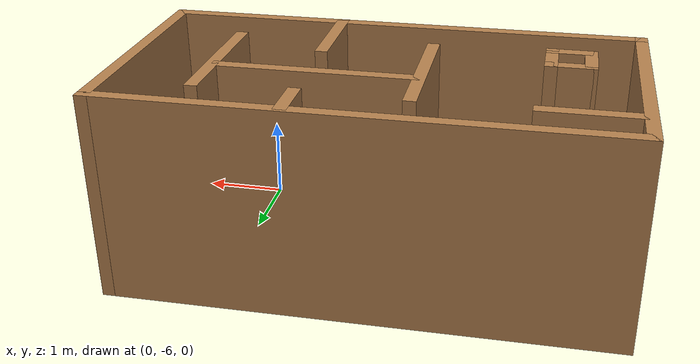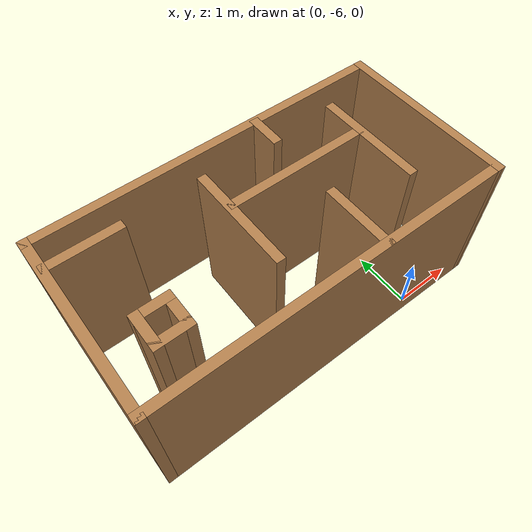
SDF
<?xml version='1.0'?>
<sdf version='1.7'>
  <model name='world_model'>
    <pose>-1.705 -3.0575 0 0 -0 0</pose>
    <link name='Wall_16'>
      <collision name='Wall_16_Collision'>
        <geometry>
          <box>
            <size>3 0.15 2.5</size>
          </box>
        </geometry>
        <pose>0 0 1.25 0 -0 0</pose>
      </collision>
      <visual name='Wall_16_Visual'>
        <pose>0 0 1.25 0 -0 0</pose>
        <geometry>
          <box>
            <size>3 0.15 2.5</size>
          </box>
        </geometry>
        <material>
          <script>
            <uri>file://media/materials/scripts/gazebo.material</uri>
            <name>Gazebo/Wood</name>
          </script>
          <ambient>1 1 1 1</ambient>
        </material>
        <meta>
          <layer>0</layer>
        </meta>
      </visual>
      <pose>-2.925 -1.5575 0 0 -0 -1.5708</pose>
    </link>
    <link name='Wall_17'>
      <collision name='Wall_17_Collision'>
        <geometry>
          <box>
            <size>6 0.15 2.5</size>
          </box>
        </geometry>
        <pose>0 0 1.25 0 -0 0</pose>
      </collision>
      <visual name='Wall_17_Visual'>
        <pose>0 0 1.25 0 -0 0</pose>
        <geometry>
          <box>
            <size>6 0.15 2.5</size>
          </box>
        </geometry>
        <material>
          <script>
            <uri>file://media/materials/scripts/gazebo.material</uri>
            <name>Gazebo/Wood</name>
          </script>
          <ambient>1 1 1 1</ambient>
        </material>
        <meta>
          <layer>0</layer>
        </meta>
      </visual>
      <pose>0 -2.9825 0 0 -0 0</pose>
    </link>
    <link name='Wall_18'>
      <collision name='Wall_18_Collision'>
        <geometry>
          <box>
            <size>3 0.15 2.5</size>
          </box>
        </geometry>
        <pose>0 0 1.25 0 -0 0</pose>
      </collision>
      <visual name='Wall_18_Visual'>
        <pose>0 0 1.25 0 -0 0</pose>
        <geometry>
          <box>
            <size>3 0.15 2.5</size>
          </box>
        </geometry>
        <material>
          <script>
            <uri>file://media/materials/scripts/gazebo.material</uri>
            <name>Gazebo/Wood</name>
          </script>
          <ambient>1 1 1 1</ambient>
        </material>
        <meta>
          <layer>0</layer>
        </meta>
      </visual>
      <pose>2.925 -1.5575 0 0 -0 1.5708</pose>
    </link>
    <link name='Wall_19'>
      <collision name='Wall_19_Collision'>
        <geometry>
          <box>
            <size>6 0.15 2.5</size>
          </box>
        </geometry>
        <pose>0 0 1.25 0 -0 0</pose>
      </collision>
      <visual name='Wall_19_Visual'>
        <pose>0 0 1.25 0 -0 0</pose>
        <geometry>
          <box>
            <size>6 0.15 2.5</size>
          </box>
        </geometry>
        <material>
          <script>
            <uri>file://media/materials/scripts/gazebo.material</uri>
            <name>Gazebo/Wood</name>
          </script>
          <ambient>1 1 1 1</ambient>
        </material>
        <meta>
          <layer>0</layer>
        </meta>
      </visual>
      <pose>0 -0.1325 0 0 -0 3.14159</pose>
    </link>
    <link name='Wall_21'>
      <collision name='Wall_21_Collision'>
        <geometry>
          <box>
            <size>1.8 0.15 2.5</size>
          </box>
        </geometry>
        <pose>0 0 1.25 0 -0 0</pose>
      </collision>
      <visual name='Wall_21_Visual'>
        <pose>0 0 1.25 0 -0 0</pose>
        <geometry>
          <box>
            <size>1.8 0.15 2.5</size>
          </box>
        </geometry>
        <material>
          <script>
            <uri>file://media/materials/scripts/gazebo.material</uri>
            <name>Gazebo/Wood</name>
          </script>
          <ambient>1 1 1 1</ambient>
        </material>
        <meta>
          <layer>0</layer>
        </meta>
      </visual>
      <pose>-0.485 -1.4675 0 0 -0 -1.5708</pose>
    </link>
    <link name='Wall_34'>
      <collision name='Wall_34_Collision'>
        <geometry>
          <box>
            <size>2.4 0.15 2.5</size>
          </box>
        </geometry>
        <pose>0 0 1.25 0 -0 0</pose>
      </collision>
      <visual name='Wall_34_Visual'>
        <pose>0 0 1.25 0 -0 0</pose>
        <geometry>
          <box>
            <size>2.4 0.15 2.5</size>
          </box>
        </geometry>
        <material>
          <script>
            <uri>file://media/materials/scripts/gazebo.material</uri>
            <name>Gazebo/Wood</name>
          </script>
          <ambient>1 1 1 1</ambient>
        </material>
        <meta>
          <layer>0</layer>
        </meta>
      </visual>
      <pose>0.7 -1.2425 0 0 -0 0</pose>
    </link>
    <link name='Wall_36'>
      <collision name='Wall_36_Collision'>
        <geometry>
          <box>
            <size>1.8 0.15 2.5</size>
          </box>
        </geometry>
        <pose>0 0 1.25 0 -0 0</pose>
      </collision>
      <visual name='Wall_36_Visual'>
        <pose>0 0 1.25 0 -0 0</pose>
        <geometry>
          <box>
            <size>1.8 0.15 2.5</size>
          </box>
        </geometry>
        <material>
          <script>
            <uri>file://media/materials/scripts/gazebo.material</uri>
            <name>Gazebo/Wood</name>
          </script>
          <ambient>1 1 1 1</ambient>
        </material>
        <meta>
          <layer>0</layer>
        </meta>
      </visual>
      <pose>1.895 -1.4475 0 0 -0 -1.5708</pose>
    </link>
    <link name='Wall_38'>
      <collision name='Wall_38_Collision'>
        <geometry>
          <box>
            <size>0.6 0.15 2.5</size>
          </box>
        </geometry>
        <pose>0 0 1.25 0 -0 0</pose>
      </collision>
      <visual name='Wall_38_Visual'>
        <pose>0 0 1.25 0 -0 0</pose>
        <geometry>
          <box>
            <size>0.6 0.15 2.5</size>
          </box>
        </geometry>
        <material>
          <script>
            <uri>file://media/materials/scripts/gazebo.material</uri>
            <name>Gazebo/Wood</name>
          </script>
          <ambient>1 1 1 1</ambient>
        </material>
        <meta>
          <layer>0</layer>
        </meta>
      </visual>
      <pose>-2.335 -2.1575 0 0 -0 -1.5708</pose>
    </link>
    <link name='Wall_42'>
      <collision name='Wall_42_Collision'>
        <geometry>
          <box>
            <size>1.2 0.15 2.5</size>
          </box>
        </geometry>
        <pose>0 0 1.25 0 -0 0</pose>
      </collision>
      <visual name='Wall_42_Visual'>
        <pose>0 0 1.25 0 -0 0</pose>
        <geometry>
          <box>
            <size>1.2 0.15 2.5</size>
          </box>
        </geometry>
        <material>
          <script>
            <uri>file://media/materials/scripts/gazebo.material</uri>
            <name>Gazebo/Wood</name>
          </script>
          <ambient>1 1 1 1</ambient>
        </material>
        <meta>
          <layer>0</layer>
        </meta>
      </visual>
      <pose>-2.35 -0.6325 0 0 -0 3.14159</pose>
    </link>
    <link name='Wall_44'>
      <collision name='Wall_44_Collision'>
        <geometry>
          <box>
            <size>0.6 0.15 2.5</size>
          </box>
        </geometry>
        <pose>0 0 1.25 0 -0 0</pose>
      </collision>
      <visual name='Wall_44_Visual'>
        <pose>0 0 1.25 0 -0 0</pose>
        <geometry>
          <box>
            <size>0.6 0.15 2.5</size>
          </box>
        </geometry>
        <material>
          <script>
            <uri>file://media/materials/scripts/gazebo.material</uri>
            <name>Gazebo/Wood</name>
          </script>
          <ambient>1 1 1 1</ambient>
        </material>
        <meta>
          <layer>0</layer>
        </meta>
      </visual>
      <pose>0.775 -0.3975 0 0 -0 1.5708</pose>
    </link>
    <link name='Wall_64'>
      <collision name='Wall_64_Collision'>
        <geometry>
          <box>
            <size>0.6 0.15 2.5</size>
          </box>
        </geometry>
        <pose>0 0 1.25 0 -0 0</pose>
      </collision>
      <visual name='Wall_64_Visual'>
        <pose>0 0 1.25 0 -0 0</pose>
        <geometry>
          <box>
            <size>0.6 0.15 2.5</size>
          </box>
        </geometry>
        <material>
          <script>
            <uri>file://media/materials/scripts/gazebo.material</uri>
            <name>Gazebo/Wood</name>
          </script>
          <ambient>1 1 1 1</ambient>
        </material>
        <meta>
          <layer>0</layer>
        </meta>
      </visual>
      <pose>-2.11 -1.9325 0 0 -0 0</pose>
    </link>
    <link name='Wall_65'>
      <collision name='Wall_65_Collision'>
        <geometry>
          <box>
            <size>0.600111 0.15 2.5</size>
          </box>
        </geometry>
        <pose>0 0 1.25 0 -0 0</pose>
      </collision>
      <visual name='Wall_65_Visual'>
        <pose>0 0 1.25 0 -0 0</pose>
        <geometry>
          <box>
            <size>0.600111 0.15 2.5</size>
          </box>
        </geometry>
        <material>
          <script>
            <uri>file://media/materials/scripts/gazebo.material</uri>
            <name>Gazebo/Wood</name>
          </script>
          <ambient>1 1 1 1</ambient>
        </material>
        <meta>
          <layer>0</layer>
        </meta>
      </visual>
      <pose>-1.885 -2.1575 0 0 -0 -1.5708</pose>
    </link>
    <link name='Wall_66'>
      <collision name='Wall_66_Collision'>
        <geometry>
          <box>
            <size>0.6 0.15 2.5</size>
          </box>
        </geometry>
        <pose>0 0 1.25 0 -0 0</pose>
      </collision>
      <visual name='Wall_66_Visual'>
        <pose>0 0 1.25 0 -0 0</pose>
        <geometry>
          <box>
            <size>0.6 0.15 2.5</size>
          </box>
        </geometry>
        <material>
          <script>
            <uri>file://media/materials/scripts/gazebo.material</uri>
            <name>Gazebo/Wood</name>
          </script>
          <ambient>1 1 1 1</ambient>
        </material>
        <meta>
          <layer>0</layer>
        </meta>
      </visual>
      <pose>-2.11 -2.3825 0 0 -0 3.14159</pose>
    </link>
    <link name='Wall_68'>
      <collision name='Wall_68_Collision'>
        <geometry>
          <box>
            <size>1.2 0.15 2.5</size>
          </box>
        </geometry>
        <pose>0 0 1.25 0 -0 0</pose>
      </collision>
      <visual name='Wall_68_Visual'>
        <pose>0 0 1.25 0 -0 0</pose>
        <geometry>
          <box>
            <size>1.2 0.15 2.5</size>
          </box>
        </geometry>
        <material>
          <script>
            <uri>file://media/materials/scripts/gazebo.material</uri>
            <name>Gazebo/Wood</name>
          </script>
          <ambient>1 1 1 1</ambient>
        </material>
        <meta>
          <layer>0</layer>
        </meta>
      </visual>
      <pose>0.775 -2.4475 0 0 -0 1.5708</pose>
    </link>
    <static>1</static>
  </model>
</sdf>
